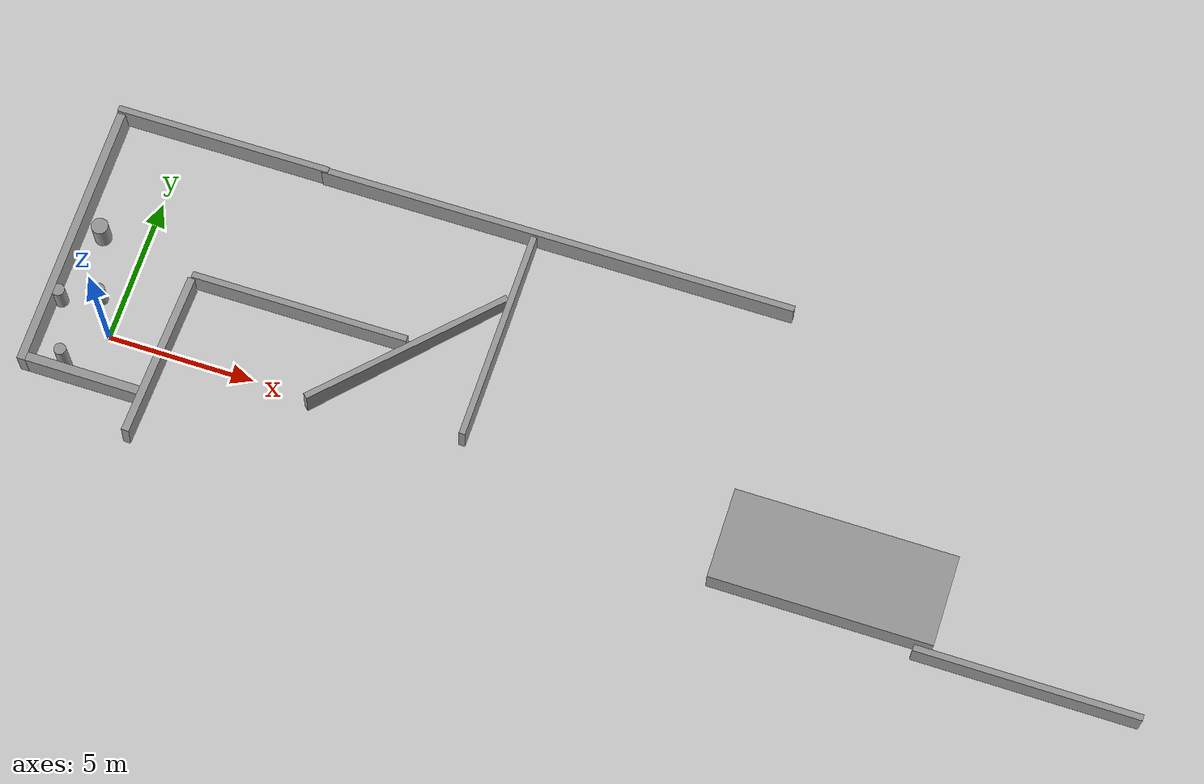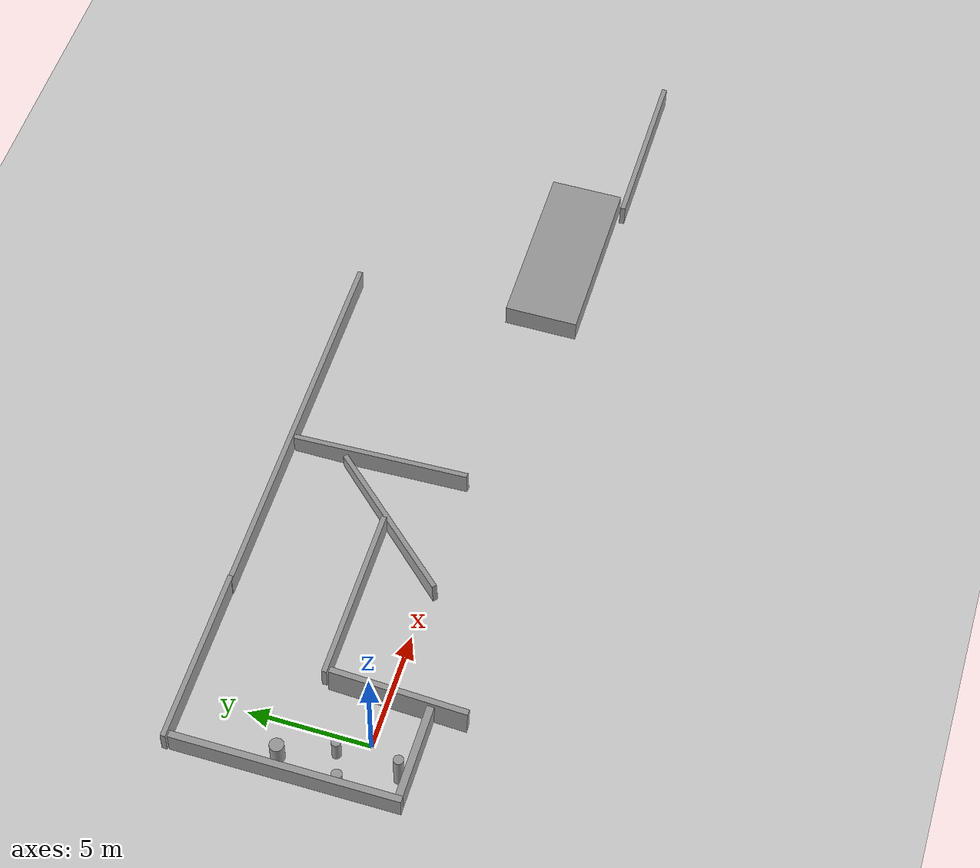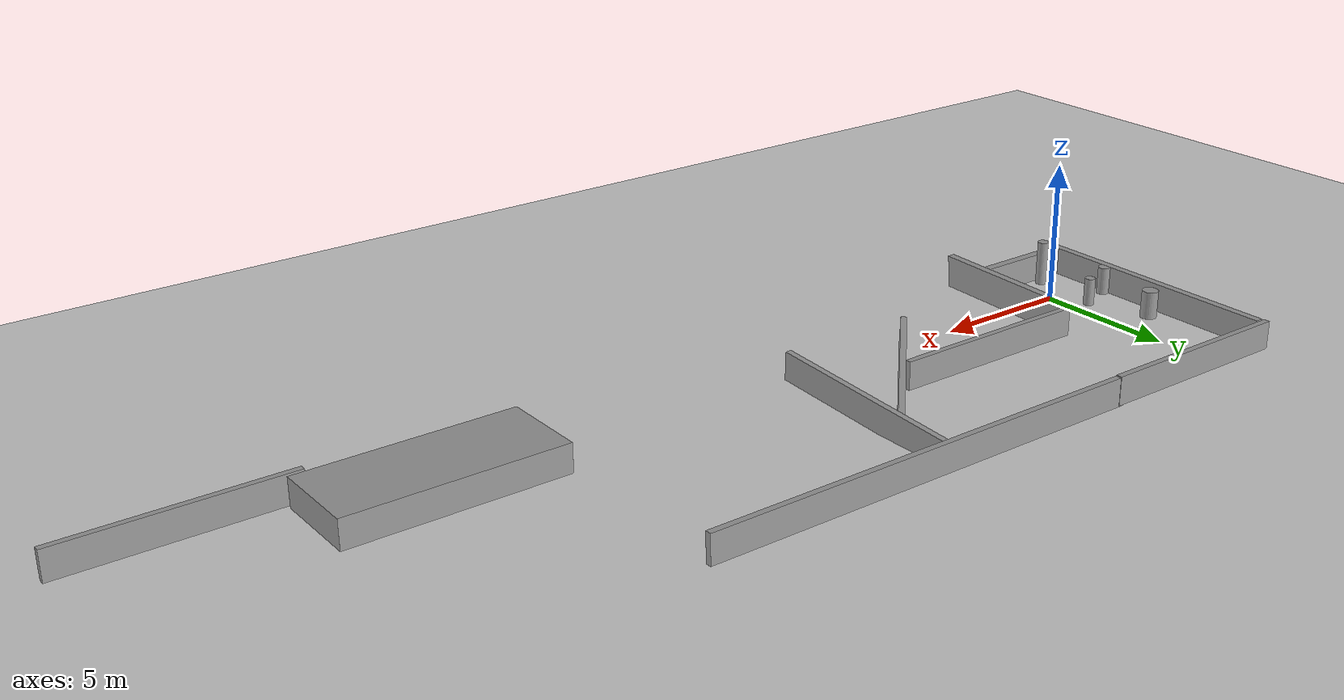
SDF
<sdf version="1.6">
 <world name="default">
  <light name="sun" type="directional">
   <pose>0 0 10 0 -0 0</pose>
   <diffuse>0.8 0.8 0.8 1</diffuse>
   <specular>0.2 0.2 0.2 1</specular>
   <attenuation>
    <range>1000</range>
    <constant>0.9</constant>
    <linear>0.01</linear>
    <quadratic>0.001</quadratic>
   </attenuation>
   <direction>-0.5 0.1 -0.9</direction>
  </light>
  <model name="ground_plane">
   <static>1</static>
   <link name="link">
    <collision name="collision">
     <geometry><plane><normal>0 0 1</normal><size>100 100</size></plane></geometry>
     <surface>
      <contact><collide_bitmask>65535</collide_bitmask></contact>
      <friction><ode><mu>100</mu><mu2>50</mu2></ode></friction>
     </surface>
    </collision>
    <visual name="visual">
     <cast_shadows>0</cast_shadows>
     <geometry><plane><normal>0 0 1</normal><size>100 100</size></plane></geometry>
     <material>
      <script><uri>file://media/materials/scripts/gazebo.material</uri><name>Gazebo/Grey</name></script>
     </material>
    </visual>
   </link>
  </model>
  <gravity>0 0 -9.8</gravity>
  <magnetic_field>6e-06 2.3e-05 -4.2e-05</magnetic_field>
  <atmosphere type="adiabatic"/>
  <physics name="default_physics" default="0" type="ode">
   <max_step_size>0.001</max_step_size>
   <real_time_factor>1</real_time_factor>
   <real_time_update_rate>1000</real_time_update_rate>
  </physics>
  <scene><ambient>0.4 0.4 0.4 1</ambient><background>0.7 0.7 0.7 1</background><shadows>1</shadows></scene>
  <audio><device>default</device></audio>
  <spherical_coordinates>
   <surface_model>EARTH_WGS84</surface_model>
   <latitude_deg>0</latitude_deg>
   <longitude_deg>0</longitude_deg>
   <elevation>0</elevation>
   <heading_deg>0</heading_deg>
  </spherical_coordinates>
  <model name="wall_0">
   <static>1</static>
   <pose>-2.23567 2.69105 0.5 0 -0 0</pose>
   <link name="link">
    <inertial>
     <mass>1</mass>
     <inertia>
      <ixx>0.166667</ixx>
      <ixy>0</ixy>
      <ixz>0</ixz>
      <iyy>0.166667</iyy>
      <iyz>0</iyz>
      <izz>0.166667</izz>
     </inertia>
    </inertial>
    <collision name="collision"><geometry><box><size>0.285616 9.2507 1</size></box></geometry></collision>
    <visual name="visual">
     <geometry><box><size>0.285616 9.2507 1</size></box></geometry>
     <material>
      <script><name>Gazebo/Grey</name><uri>file://media/materials/scripts/gazebo.material</uri></script>
     </material>
    </visual>
   </link>
  </model>
  <model name="wall_1">
   <static>1</static>
   <pose>1.94614 -0.437404 0.433612 -3.14018 0.072368 -0.037075</pose>
   <link name="link">
    <inertial>
     <mass>1</mass>
     <inertia>
      <ixx>0.166667</ixx>
      <ixy>0</ixy>
      <ixz>0</ixz>
      <iyy>0.166667</iyy>
      <iyz>0</iyz>
      <izz>0.166667</izz>
     </inertia>
    </inertial>
    <collision name="collision"><geometry><box><size>0.255907 5.63626 1.47053</size></box></geometry></collision>
    <visual name="visual">
     <geometry><box><size>0.255907 5.63626 1.47053</size></box></geometry>
     <material>
      <script><name>Gazebo/Grey</name><uri>file://media/materials/scripts/gazebo.material</uri></script>
     </material>
    </visual>
   </link>
  </model>
  <model name="wall_2">
   <static>1</static>
   <pose>1.31565 7.49233 0.500023 -1e-05 0 0</pose>
   <link name="link">
    <inertial>
     <mass>1</mass>
     <inertia>
      <ixx>0.166667</ixx>
      <ixy>0</ixy>
      <ixz>0</ixz>
      <iyy>0.166667</iyy>
      <iyz>0</iyz>
      <izz>0.166667</izz>
     </inertia>
    </inertial>
    <collision name="collision"><geometry><box><size>7.44286 0.210664 1</size></box></geometry></collision>
    <visual name="visual">
     <geometry><box><size>7.44286 0.210664 1</size></box></geometry>
     <material>
      <script><name>Gazebo/Grey</name><uri>file://media/materials/scripts/gazebo.material</uri></script>
     </material>
    </visual>
   </link>
  </model>
  <model name="wall_3">
   <static>1</static>
   <pose>-0.085019 -1.77827 0.5 0 -0 0</pose>
   <link name="link">
    <inertial>
     <mass>1</mass>
     <inertia>
      <ixx>0.166667</ixx>
      <ixy>0</ixy>
      <ixz>0</ixz>
      <iyy>0.166667</iyy>
      <iyz>0</iyz>
      <izz>0.166667</izz>
     </inertia>
    </inertial>
    <collision name="collision"><geometry><box><size>4.02855 0.302729 1</size></box></geometry></collision>
    <visual name="visual">
     <geometry><box><size>4.02855 0.302729 1</size></box></geometry>
     <material>
      <script><name>Gazebo/Grey</name><uri>file://media/materials/scripts/gazebo.material</uri></script>
     </material>
    </visual>
   </link>
  </model>
  <model name="cylinder_0">
   <static>1</static>
   <pose>-0.707536 1.16689 0.499995 3e-06 -2e-06 0</pose>
   <link name="link">
    <inertial>
     <mass>1</mass>
     <inertia><ixx>0.145833</ixx><ixy>0</ixy><ixz>0</ixz><iyy>0.145833</iyy><iyz>0</iyz><izz>0.125</izz></inertia>
    </inertial>
    <collision name="collision">
     <geometry><cylinder><radius>0.18809</radius><length>1</length></cylinder></geometry>
    </collision>
    <visual name="visual">
     <geometry><cylinder><radius>0.18809</radius><length>1</length></cylinder></geometry>
     <material>
      <script><name>Gazebo/Grey</name><uri>file://media/materials/scripts/gazebo.material</uri></script>
     </material>
    </visual>
   </link>
  </model>
  <model name="cylinder_1">
   <static>1</static>
   <pose>-1.47419 3.26413 0.499998 3e-06 3e-06 0</pose>
   <link name="link">
    <inertial>
     <mass>1</mass>
     <inertia><ixx>0.145833</ixx><ixy>0</ixy><ixz>0</ixz><iyy>0.145833</iyy><iyz>0</iyz><izz>0.125</izz></inertia>
    </inertial>
    <collision name="collision">
     <geometry><cylinder><radius>0.290158</radius><length>1</length></cylinder></geometry>
    </collision>
    <visual name="visual">
     <geometry><cylinder><radius>0.290158</radius><length>1</length></cylinder></geometry>
     <material>
      <script><name>Gazebo/Grey</name><uri>file://media/materials/scripts/gazebo.material</uri></script>
     </material>
    </visual>
   </link>
  </model>
  <model name="cylinder_2">
   <static>1</static>
   <pose>-1.9612 0.718953 0.499993 -3e-06 3e-06 0</pose>
   <link name="link">
    <inertial>
     <mass>1</mass>
     <inertia><ixx>0.145833</ixx><ixy>0</ixy><ixz>0</ixz><iyy>0.145833</iyy><iyz>0</iyz><izz>0.125</izz></inertia>
    </inertial>
    <collision name="collision">
     <geometry><cylinder><radius>0.217578</radius><length>1</length></cylinder></geometry>
    </collision>
    <visual name="visual">
     <geometry><cylinder><radius>0.217578</radius><length>1</length></cylinder></geometry>
     <material>
      <script><name>Gazebo/Grey</name><uri>file://media/materials/scripts/gazebo.material</uri></script>
     </material>
    </visual>
   </link>
  </model>
  <model name="cylinder_3">
   <static>1</static>
   <pose>-0.990461 -1.40372 0.500001 -3e-06 2e-06 0</pose>
   <link name="link">
    <inertial>
     <mass>1</mass>
     <inertia><ixx>0.145833</ixx><ixy>0</ixy><ixz>0</ixz><iyy>0.145833</iyy><iyz>0</iyz><izz>0.125</izz></inertia>
    </inertial>
    <collision name="collision">
     <geometry><cylinder><radius>0.202321</radius><length>2.14615</length></cylinder></geometry>
    </collision>
    <visual name="visual">
     <geometry><cylinder><radius>0.202321</radius><length>2.14615</length></cylinder></geometry>
     <material>
      <script><name>Gazebo/Grey</name><uri>file://media/materials/scripts/gazebo.material</uri></script>
     </material>
    </visual>
   </link>
  </model>
  <model name="wall_2_clone">
   <static>1</static>
   <pose>5.74603 2.58292 0.500023 -1e-05 0 0</pose>
   <link name="link">
    <inertial>
     <mass>1</mass>
     <inertia>
      <ixx>0.166667</ixx>
      <ixy>0</ixy>
      <ixz>0</ixz>
      <iyy>0.166667</iyy>
      <iyz>0</iyz>
      <izz>0.166667</izz>
     </inertia>
    </inertial>
    <collision name="collision"><geometry><box><size>7.44286 0.210664 1</size></box></geometry></collision>
    <visual name="visual">
     <geometry><box><size>7.44286 0.210664 1</size></box></geometry>
     <material>
      <script><name>Gazebo/Grey</name><uri>file://media/materials/scripts/gazebo.material</uri></script>
     </material>
    </visual>
   </link>
  </model>
  <model name="wall_2_clone_0">
   <static>1</static>
   <pose>12.9884 7.47438 0.462343 -1e-05 0 0</pose>
   <link name="link">
    <inertial>
     <mass>1</mass>
     <inertia>
      <ixx>0.166667</ixx>
      <ixy>0</ixy>
      <ixz>0</ixz>
      <iyy>0.166667</iyy>
      <iyz>0</iyz>
      <izz>0.166667</izz>
     </inertia>
    </inertial>
    <collision name="collision"><geometry><box><size>16.3448 0.210664 1</size></box></geometry></collision>
    <visual name="visual">
     <geometry><box><size>16.3448 0.210664 1</size></box></geometry>
     <material>
      <script><name>Gazebo/Grey</name><uri>file://media/materials/scripts/gazebo.material</uri></script>
     </material>
    </visual>
   </link>
  </model>
  <model name="wall_2_clone_clone">
   <static>1</static>
   <pose>24.8376 -0.625814 0.500023 -1e-05 0 0</pose>
   <link name="link">
    <inertial>
     <mass>1</mass>
     <inertia>
      <ixx>0.166667</ixx>
      <ixy>0</ixy>
      <ixz>0</ixz>
      <iyy>0.166667</iyy>
      <iyz>0</iyz>
      <izz>0.166667</izz>
     </inertia>
    </inertial>
    <collision name="collision"><geometry><box><size>7.44286 3.08246 1</size></box></geometry></collision>
    <visual name="visual">
     <geometry><box><size>7.44286 3.08246 1</size></box></geometry>
     <material>
      <script><name>Gazebo/Grey</name><uri>file://media/materials/scripts/gazebo.material</uri></script>
     </material>
    </visual>
   </link>
  </model>
  <model name="wall_2_clone_clone_0">
   <static>1</static>
   <pose>31.6833 -2.41252 0.500023 -1e-05 0 0</pose>
   <link name="link">
    <inertial>
     <mass>1</mass>
     <inertia>
      <ixx>0.166667</ixx>
      <ixy>0</ixy>
      <ixz>0</ixz>
      <iyy>0.166667</iyy>
      <iyz>0</iyz>
      <izz>0.166667</izz>
     </inertia>
    </inertial>
    <collision name="collision"><geometry><box><size>7.44286 0.210664 1</size></box></geometry></collision>
    <visual name="visual">
     <geometry><box><size>7.44286 0.210664 1</size></box></geometry>
     <material>
      <script><name>Gazebo/Grey</name><uri>file://media/materials/scripts/gazebo.material</uri></script>
     </material>
    </visual>
   </link>
  </model>
  <model name="wall_2_clone_clone_0_clone">
   <static>1</static>
   <pose>12.2377 3.6393 0.500023 -0.01235 -0.049904 -1.57136</pose>
   <link name="link">
    <inertial>
     <mass>1</mass>
     <inertia>
      <ixx>0.166667</ixx>
      <ixy>0</ixy>
      <ixz>0</ixz>
      <iyy>0.166667</iyy>
      <iyz>0</iyz>
      <izz>0.166667</izz>
     </inertia>
    </inertial>
    <collision name="collision"><geometry><box><size>7.44286 0.210664 1</size></box></geometry></collision>
    <visual name="visual">
     <geometry><box><size>7.44286 0.210664 1</size></box></geometry>
     <material>
      <script><name>Gazebo/Grey</name><uri>file://media/materials/scripts/gazebo.material</uri></script>
     </material>
    </visual>
   </link>
  </model>
  <model name="wall_2_clone_clone_0_clone_clone">
   <static>1</static>
   <pose>9.51032 2.37507 0.297169 0.025208 -0.044809 -2.32674</pose>
   <link name="link">
    <inertial>
     <mass>1</mass>
     <inertia>
      <ixx>0.166667</ixx>
      <ixy>0</ixy>
      <ixz>0</ixz>
      <iyy>0.166667</iyy>
      <iyz>0</iyz>
      <izz>0.166667</izz>
     </inertia>
    </inertial>
    <collision name="collision"><geometry><box><size>7.44286 0.210664 1</size></box></geometry></collision>
    <visual name="visual">
     <geometry><box><size>7.44286 0.210664 1</size></box></geometry>
     <material>
      <script><name>Gazebo/Grey</name><uri>file://media/materials/scripts/gazebo.material</uri></script>
     </material>
    </visual>
   </link>
  </model>
 </world>
</sdf>
